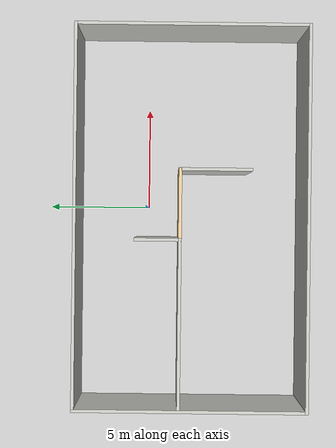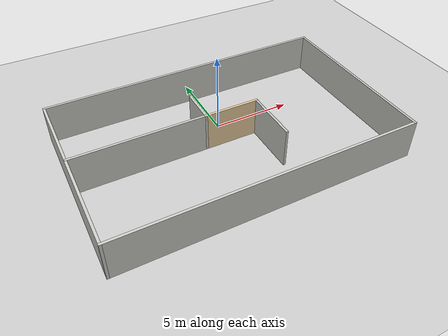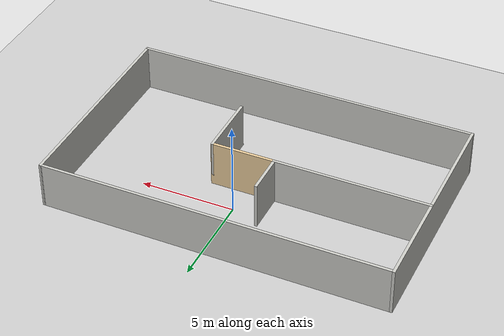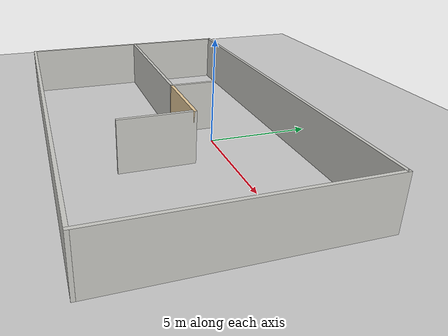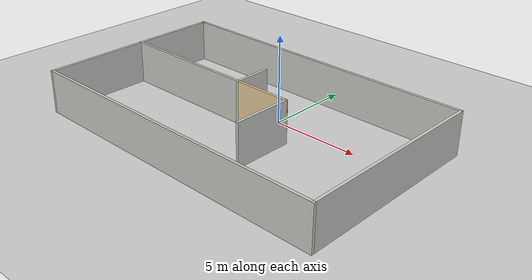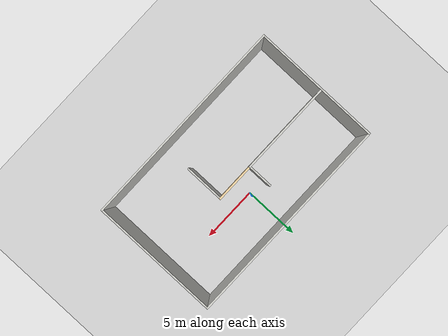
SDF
<sdf version="1.7">
 <world name="default">
  <light name="sun" type="directional">
   <pose>0 0 10 0 -0 0</pose>
   <diffuse>0.8 0.8 0.8 1</diffuse>
   <specular>0.2 0.2 0.2 1</specular>
   <attenuation>
    <range>1000</range>
    <constant>0.9</constant>
    <linear>0.01</linear>
    <quadratic>0.001</quadratic>
   </attenuation>
   <direction>-0.5 0.1 -0.9</direction>
   <spot><inner_angle>0</inner_angle><outer_angle>0</outer_angle><falloff>0</falloff></spot>
  </light>
  <model name="ground_plane">
   <static>1</static>
   <link name="link">
    <collision name="collision">
     <geometry><plane><normal>0 0 1</normal><size>100 100</size></plane></geometry>
     <surface><friction><ode><mu>100</mu><mu2>50</mu2></ode></friction></surface>
    </collision>
    <visual name="visual">
     <cast_shadows>0</cast_shadows>
     <geometry><plane><normal>0 0 1</normal><size>100 100</size></plane></geometry>
     <material>
      <script><uri>file://media/materials/scripts/gazebo.material</uri><name>Gazebo/Grey</name></script>
     </material>
    </visual>
   </link>
  </model>
  <gravity>0 0 -9.8</gravity>
  <magnetic_field>6e-06 2.3e-05 -4.2e-05</magnetic_field>
  <atmosphere type="adiabatic"/>
  <physics type="ode">
   <max_step_size>0.001</max_step_size>
   <real_time_factor>1</real_time_factor>
   <real_time_update_rate>1000</real_time_update_rate>
  </physics>
  <scene><ambient>0.4 0.4 0.4 1</ambient><background>0.7 0.7 0.7 1</background><shadows>1</shadows></scene>
  <spherical_coordinates>
   <surface_model>EARTH_WGS84</surface_model>
   <latitude_deg>0</latitude_deg>
   <longitude_deg>0</longitude_deg>
   <elevation>0</elevation>
   <heading_deg>0</heading_deg>
  </spherical_coordinates>
  <model name="house2">
   <pose>-0.490749 -2.0763 0 0 -0 0</pose>
   <link name="Wall_32">
    <collision name="Wall_32_Collision">
     <geometry><box><size>18.5 0.15 2.5</size></box></geometry>
     <pose>0 0 1.25 0 -0 0</pose>
    </collision>
    <visual name="Wall_32_Visual">
     <pose>0 0 1.25 0 -0 0</pose>
     <geometry><box><size>18.5 0.15 2.5</size></box></geometry>
     <material>
      <script><uri>file://media/materials/scripts/gazebo.material</uri><name>Gazebo/CeilingTiled</name></script>
      <ambient>0.921569 0.807843 0.615686 1</ambient>
     </material>
     <meta><layer>0</layer></meta>
    </visual>
    <pose>0 -5.55 0 0 -0 3.14159</pose>
   </link>
   <link name="Wall_33">
    <collision name="Wall_33_Collision">
     <geometry><box><size>11.25 0.15 2.5</size></box></geometry>
     <pose>0 0 1.25 0 -0 0</pose>
    </collision>
    <visual name="Wall_33_Visual">
     <pose>0 0 1.25 0 -0 0</pose>
     <geometry><box><size>11.25 0.15 2.5</size></box></geometry>
     <material>
      <script><uri>file://media/materials/scripts/gazebo.material</uri><name>Gazebo/CeilingTiled</name></script>
      <ambient>0.921569 0.807843 0.615686 1</ambient>
     </material>
     <meta><layer>0</layer></meta>
    </visual>
    <pose>-9.175 -0 0 0 -0 1.5708</pose>
   </link>
   <link name="Wall_34">
    <collision name="Wall_34_Collision">
     <geometry><box><size>18.5 0.15 2.5</size></box></geometry>
     <pose>0 0 1.25 0 -0 0</pose>
    </collision>
    <visual name="Wall_34_Visual">
     <pose>0 0 1.25 0 -0 0</pose>
     <geometry><box><size>18.5 0.15 2.5</size></box></geometry>
     <material>
      <script><uri>file://media/materials/scripts/gazebo.material</uri><name>Gazebo/CeilingTiled</name></script>
      <ambient>0.921569 0.807843 0.615686 1</ambient>
     </material>
     <meta><layer>0</layer></meta>
    </visual>
    <pose>0 5.55 0 0 -0 0</pose>
   </link>
   <link name="Wall_35">
    <collision name="Wall_35_Collision">
     <geometry><box><size>11.25 0.15 2.5</size></box></geometry>
     <pose>0 0 1.25 0 -0 0</pose>
    </collision>
    <visual name="Wall_35_Visual">
     <pose>0 0 1.25 0 -0 0</pose>
     <geometry><box><size>11.25 0.15 2.5</size></box></geometry>
     <material>
      <script><uri>file://media/materials/scripts/gazebo.material</uri><name>Gazebo/CeilingTiled</name></script>
      <ambient>0.921569 0.807843 0.615686 1</ambient>
     </material>
     <meta><layer>0</layer></meta>
    </visual>
    <pose>9.175 -0 0 0 -0 -1.5708</pose>
   </link>
   <link name="Wall_37">
    <collision name="Wall_37_Collision">
     <geometry><box><size>8.25 0.15 2.5</size></box></geometry>
     <pose>0 0 1.25 0 -0 0</pose>
    </collision>
    <visual name="Wall_37_Visual">
     <pose>0 0 1.25 0 -0 0</pose>
     <geometry><box><size>8.25 0.15 2.5</size></box></geometry>
     <material>
      <script><uri>file://media/materials/scripts/gazebo.material</uri><name>Gazebo/CeilingTiled</name></script>
      <ambient>0.921569 0.807843 0.615686 1</ambient>
     </material>
     <meta><layer>0</layer></meta>
    </visual>
    <pose>-5.09202 0.538872 0 0 -0 0</pose>
   </link>
   <link name="Wall_38">
    <collision name="Wall_38_Collision">
     <geometry><box><size>2.25 0.15 2.5</size></box></geometry>
     <pose>0 0 1.25 0 -0 0</pose>
    </collision>
    <visual name="Wall_38_Visual">
     <pose>0 0 1.25 0 -0 0</pose>
     <geometry><box><size>2.25 0.15 2.5</size></box></geometry>
     <material>
      <script><uri>file://media/materials/scripts/gazebo.material</uri><name>Gazebo/CeilingTiled</name></script>
      <ambient>0.921569 0.807843 0.615686 1</ambient>
     </material>
     <meta><layer>0</layer></meta>
    </visual>
    <pose>-1.04202 1.58887 0 0 -0 1.5708</pose>
   </link>
   <link name="Wall_40">
    <collision name="Wall_40_Collision">
     <geometry><box><size>3.5 0.15 2.5</size></box></geometry>
     <pose>0 0 1.25 0 -0 0</pose>
    </collision>
    <visual name="Wall_40_Visual">
     <pose>0 0 1.25 0 -0 0</pose>
     <geometry><box><size>3.5 0.15 2.5</size></box></geometry>
     <material>
      <script><uri>file://media/materials/scripts/gazebo.material</uri><name>Gazebo/Grey</name></script>
      <ambient>0.921569 0.807843 0.615686 1</ambient>
     </material>
     <meta><layer>0</layer></meta>
    </visual>
    <pose>0.632975 0.538872 0 0 -0 0</pose>
   </link>
   <link name="Wall_41">
    <collision name="Wall_41_Collision">
     <geometry><box><size>3.5 0.15 2.5</size></box></geometry>
     <pose>0 0 1.25 0 -0 0</pose>
    </collision>
    <visual name="Wall_41_Visual">
     <pose>0 0 1.25 0 -0 0</pose>
     <geometry><box><size>3.5 0.15 2.5</size></box></geometry>
     <material>
      <script><uri>file://media/materials/scripts/gazebo.material</uri><name>Gazebo/CeilingTiled</name></script>
      <ambient>0.921569 0.807843 0.615686 1</ambient>
     </material>
     <meta><layer>0</layer></meta>
    </visual>
    <pose>2.30797 -1.13613 0 0 -0 -1.5708</pose>
   </link>
   <static>1</static>
  </model>
 </world>
</sdf>
